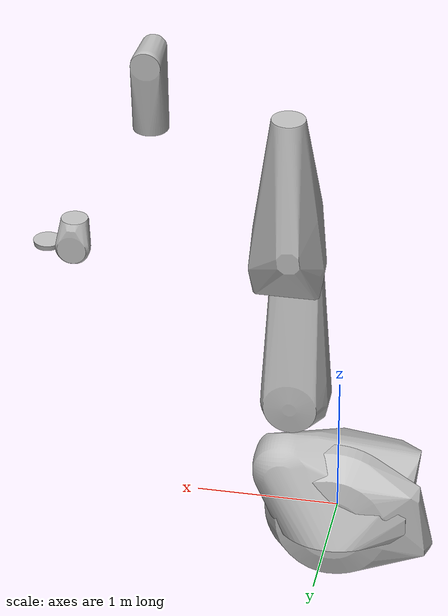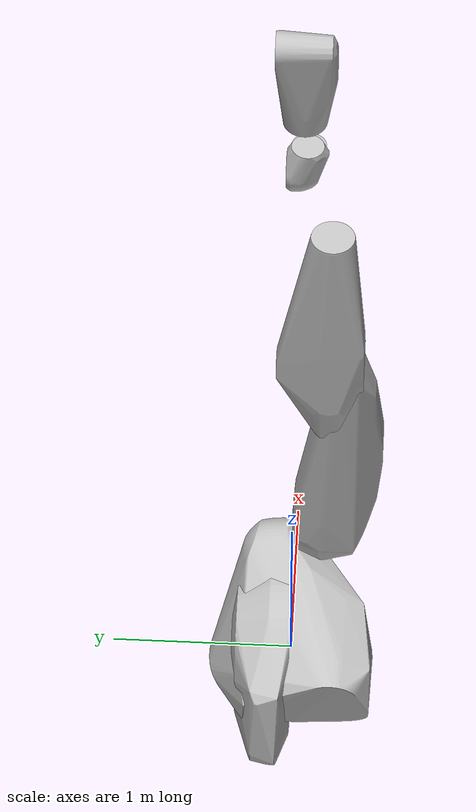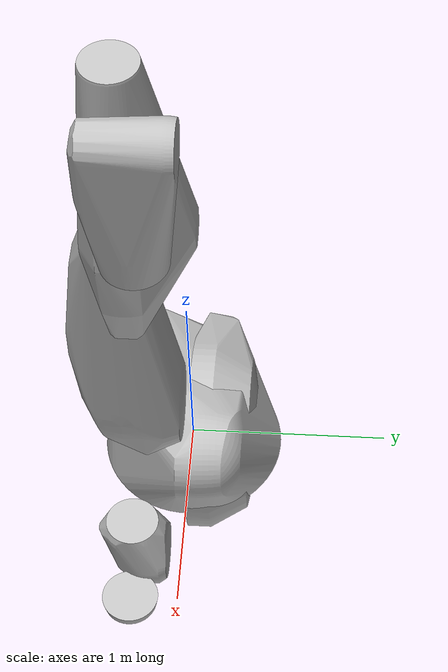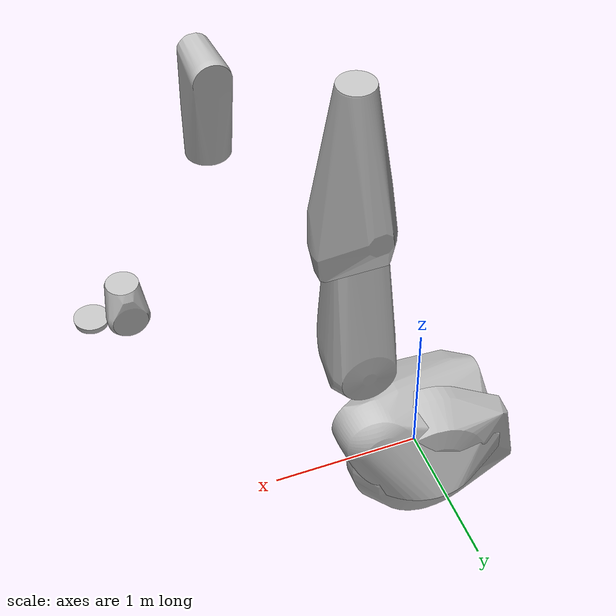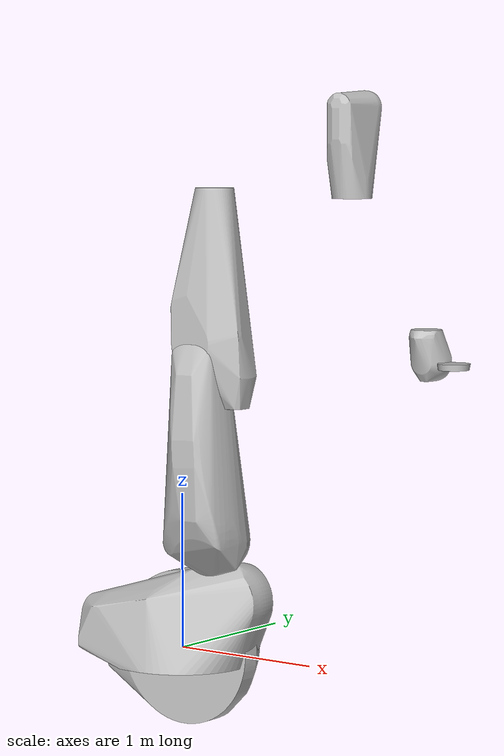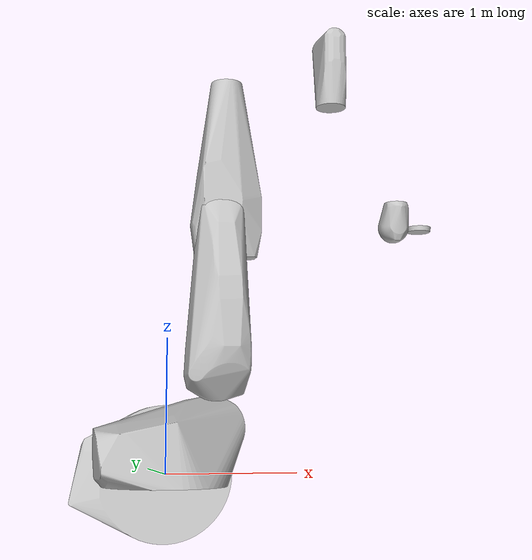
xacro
<robot name="kuka" xmlns:xacro="http://wiki.ros.org/xacro">

    <xacro:include filename="$(find practice)/urdf/kr210l150_macro.xacro"/>
    <xacro:kuka_kr210l150 prefix=""/>

    <link name="world"/>

    <joint name="world__base_link" type="fixed">
        <parent link="world"/>
        <child link="base_link"/>
        <origin xyz="0 0 0" rpy="0 0 0"/>
    </joint>
</robot>

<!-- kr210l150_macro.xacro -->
<robot xmlns:xacro="http://wiki.ros.org/xacro">
  <xacro:property name="pi" value="3.141592654"/>
  <!--degrees to radians-->
  <xacro:property name="deg" value="0.017453293"/>

  <xacro:macro name="kuka_kr210l150" params="prefix">
    <!-- links -->
    <link name="${prefix}base_link">
      <inertial>
        <origin xyz="-0.027804 0.00039112 0.14035" rpy="0 0 0"/>
        <mass value="1572.9"/>
        <inertia ixx="89.282" ixy="-0.47721" ixz="0.85562" iyy="107.51" iyz="0.0067576" izz="172.02"/>
      </inertial>
      <visual>
        <origin xyz="0 0 0" rpy="${-pi/2} 0 0"/>
        <geometry>
          <mesh filename="package://kuka_kr210_support/meshes/kr210l150/collision/base_link.stl"/>
        </geometry>
        <material name="">
          <color rgba="0.75294 0.75294 0.75294 1"/>
        </material>
      </visual>
      <collision>
        <origin xyz="0 0 0" rpy="${-pi/2} 0 0"/>
        <geometry>
          <mesh filename="package://kuka_kr210_support/meshes/kr210l150/collision/base_link.stl"/>
        </geometry>
      </collision>
    </link>
    <link name="${prefix}link_1">
      <inertial>
        <origin xyz="-0.036811 -0.024697 0.56577" rpy="0 0 0"/>
        <mass value="1385.5"/>
        <inertia ixx="90.873" ixy="33.809" ixz="17.159" iyy="147.03" iyz="0.063634" izz="168.19"/>
      </inertial>
      <visual>
        <origin xyz="0 0 0" rpy="0 0 0"/>
        <geometry>
          <mesh filename="package://kuka_kr210_support/meshes/kr210l150/collision/link_1.stl"/>
        </geometry>
        <material name="">
          <color rgba="0.75294 0.75294 0.75294 1"/>
        </material>
      </visual>
      <collision>
        <origin xyz="0 0 0" rpy="0 0 0"/>
        <geometry>
          <mesh filename="package://kuka_kr210_support/meshes/kr210l150/collision/link_1.stl"/>
        </geometry>
      </collision>
    </link>
    <link name="${prefix}link_2">
      <inertial>
        <origin xyz="0.016923 -0.19196 0.44751" rpy="0 0 0"/>
        <mass value="958.62"/>
        <inertia ixx="180.42" ixy="-0.83462" ixz="0.32549" iyy="177.68" iyz="-20.82" izz="20.495"/>
      </inertial>
      <visual>
        <origin xyz="0 0 0" rpy="0 0 0"/>
        <geometry>
          <mesh filename="package://kuka_kr210_support/meshes/kr210l150/collision/link_2.stl"/>
        </geometry>
        <material name="">
          <color rgba="0.75294 0.75294 0.75294 1"/>
        </material>
      </visual>
      <collision>
        <origin xyz="0 0 0" rpy="0 0 0"/>
        <geometry>
          <mesh filename="package://kuka_kr210_support/meshes/kr210l150/collision/link_2.stl"/>
        </geometry>
      </collision>
    </link>
    <link name="${prefix}link_3">
      <inertial>
        <origin xyz="0.18842 0.18344 -0.042799" rpy="0 0 0"/>
        <mass value="710.03"/>
        <inertia ixx="11.887" ixy="-0.12154" ixz="-1.3604" iyy="98.805" iyz="-0.056505" izz="96.251"/>
      </inertial>
      <visual>
        <origin xyz="0 0 0" rpy="0 0 0"/>
        <geometry>
          <mesh filename="package://kuka_kr210_support/meshes/kr210l150/collision/link_3.stl"/>
        </geometry>
        <material name="">
          <color rgba="0.75294 0.75294 0.75294 1"/>
        </material>
      </visual>
      <collision>
        <origin xyz="0 0 0" rpy="0 0 0"/>
        <geometry>
          <mesh filename="package://kuka_kr210_support/meshes/kr210l150/collision/link_3.stl"/>
        </geometry>
      </collision>
    </link>
    <link name="${prefix}link_4">
      <inertial>
        <origin xyz="0.27146 -0.007326 5.2775E-05" rpy="0 0 0"/>
        <mass value="173.73"/>
        <inertia ixx="1.8001" ixy="-0.18515" ixz="0.00051232" iyy="5.514" iyz="0.00070469" izz="6.3498"/>
      </inertial>
      <visual>
        <origin xyz="0 0 0" rpy="0 0 0"/>
        <geometry>
          <mesh filename="package://kuka_kr210_support/meshes/kr210l150/collision/link_4.stl"/>
        </geometry>
        <material name="">
          <color rgba="0.75294 0.75294 0.75294 1"/>
        </material>
      </visual>
      <collision>
        <origin xyz="0 0 0" rpy="0 0 0"/>
        <geometry>
          <mesh filename="package://kuka_kr210_support/meshes/kr210l150/collision/link_4.stl"/>
        </geometry>
      </collision>
    </link>
    <link name="${prefix}link_5">
      <inertial>
        <origin xyz="0.04379 0.025984 3.5491E-07" rpy="0 0 0"/>
        <mass value="72.17"/>
        <inertia ixx="0.3938" ixy="-0.085332" ixz="1.7223E-06" iyy="0.68945" iyz="-7.0292E-06" izz="0.67292"/>
      </inertial>
      <visual>
        <origin xyz="0 0 0" rpy="0 0 0"/>
        <geometry>
          <mesh filename="package://kuka_kr210_support/meshes/kr210l150/collision/link_5.stl"/>
        </geometry>
        <material name="">
          <color rgba="0.75294 0.75294 0.75294 1"/>
        </material>
      </visual>
      <collision>
        <origin xyz="0 0 0" rpy="0 0 0"/>
        <geometry>
          <mesh filename="package://kuka_kr210_support/meshes/kr210l150/collision/link_5.stl"/>
        </geometry>
      </collision>
    </link>
    <link name="${prefix}link_6">
      <inertial>
        <origin xyz="-0.017956 -1.5237E-05 0.00015484" rpy="0 0 0"/>
        <mass value="6.3154"/>
        <inertia ixx="0.031746" ixy="1.7673E-07" ixz="-6.6558E-06" iyy="0.016686" iyz="1.4304E-07" izz="0.016723"/>
      </inertial>
      <visual>
        <origin xyz="0 0 0" rpy="0 0 0"/>
        <geometry>
          <mesh filename="package://kuka_kr210_support/meshes/kr210l150/collision/link_6.stl"/>
        </geometry>
        <material name="">
          <color rgba="0.75294 0.75294 0.75294 1"/>
        </material>
      </visual>
      <collision>
        <origin xyz="0 0 0" rpy="0 0 0"/>
        <geometry>
          <mesh filename="package://kuka_kr210_support/meshes/kr210l150/collision/link_6.stl"/>
        </geometry>
      </collision>
    </link>
    <!-- This frame corresponds to the $FLANGE coordinate system in KUKA KRC controllers. -->
    <link name="${prefix}tool0"/>

    <!-- joints -->
    <joint name="${prefix}joint_a1" type="revolute">
      <origin xyz="-0.00262 0.00097586 0.33099" rpy="0 0 0"/>
      <parent link="${prefix}base_link"/>
      <child link="${prefix}link_1"/>
      <axis xyz="0 0 1"/>
      <limit lower="${-185*deg}" upper="${185*deg}" effort="0" velocity="${123*deg}"/>
    </joint>
    <joint name="${prefix}joint_a2" type="revolute">
      <origin xyz="0.35277 -0.037476 0.4192" rpy="0 0 0"/>
      <parent link="${prefix}link_1"/>
      <child link="${prefix}link_2"/>
      <axis xyz="0 1 0"/>
      <limit lower="${-45*deg}" upper="${85*deg}" effort="0" velocity="${115*deg}"/>
    </joint>
    <joint name="${prefix}joint_a3" type="revolute">
      <origin xyz="-9.8483E-05 -0.1475 1.2499" rpy="0 0 0"/>
      <parent link="${prefix}link_2"/>
      <child link="${prefix}link_3"/>
      <axis xyz="0 1 0"/>
      <limit lower="${-210*deg}" upper="${(155-90)*deg}" effort="0" velocity="${112*deg}"/>
    </joint>
    <joint name="${prefix}joint_a4" type="revolute">
      <origin xyz="0.95795 0.184 -0.055059" rpy="0 0 0"/>
      <parent link="${prefix}link_3"/>
      <child link="${prefix}link_4"/>
      <axis xyz="1 0 0"/>
      <limit lower="${-350*deg}" upper="${350*deg}" effort="0" velocity="${179*deg}"/>
    </joint>
    <joint name="${prefix}joint_a5" type="revolute">
      <origin xyz="0.542 0 0" rpy="0 0 0"/>
      <parent link="${prefix}link_4"/>
      <child link="${prefix}link_5"/>
      <axis xyz="0 1 0"/>
      <limit lower="${-125*deg}" upper="${125*deg}" effort="0" velocity="${172*deg}"/>
    </joint>
    <joint name="${prefix}joint_a6" type="revolute">
      <origin xyz="0.1925 0 0" rpy="0 0 0"/>
      <parent link="${prefix}link_5"/>
      <child link="${prefix}link_6"/>
      <axis xyz="1 0 0"/>
      <limit lower="${-350*deg}" upper="${350*deg}" effort="0" velocity="${219*deg}"/>
    </joint>
    <joint name="${prefix}link_6-tool0" type="fixed">
      <parent link="${prefix}link_6"/>
      <child link="${prefix}tool0"/>
      <origin xyz="0.0375 0 -0.00023924" rpy="0 0 0"/>
    </joint>

    <!-- rename 'Link1' to 'link_1', maintain bw-compatibility -->
    <link name="${prefix}Link1"/>
    <joint name="${prefix}Link1-link_1" type="fixed">
      <parent link="${prefix}link_1"/>
      <child link="${prefix}Link1"/>
      <origin xyz="0 0 0" rpy="0 0 0"/>
    </joint>
  </xacro:macro>
</robot>
